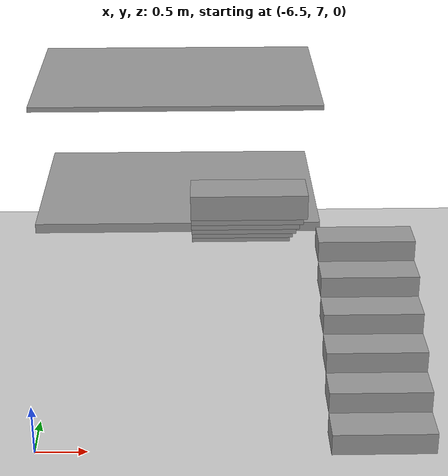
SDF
<sdf version="1.6">
 <world name="stairs_in_emptyworld">
  <light name="sun" type="directional"><cast_shadows>0</cast_shadows><pose>0 0 10 0 -0 0</pose></light>
  <model name="ground_plane">
   <static>1</static>
   <link name="link">
    <collision name="collision">
     <geometry><plane><normal>0 0 1</normal><size>100 100</size></plane></geometry>
     <surface><friction><ode><mu>100</mu><mu2>50</mu2></ode></friction></surface>
    </collision>
    <visual name="visual">
     <cast_shadows>0</cast_shadows>
     <geometry><plane><normal>0 0 1</normal><size>100 100</size></plane></geometry>
     <material>
      <script><uri>file://media/materials/scripts/gazebo.material</uri><name>Gazebo/Grey</name></script>
     </material>
    </visual>
   </link>
  </model>
  <gravity>0 0 -9.8</gravity>
  <magnetic_field>6e-06 2.3e-05 -4.2e-05</magnetic_field>
  <atmosphere type="adiabatic"/>
  <physics name="default_physics" default="0" type="ode">
   <max_step_size>0.001</max_step_size>
   <real_time_factor>1</real_time_factor>
   <real_time_update_rate>1000</real_time_update_rate>
  </physics>
  <scene><shadows>0</shadows></scene>
  <spherical_coordinates>
   <surface_model>EARTH_WGS84</surface_model>
   <latitude_deg>0</latitude_deg>
   <longitude_deg>0</longitude_deg>
   <elevation>0</elevation>
   <heading_deg>0</heading_deg>
  </spherical_coordinates>
  <model name="stairs_platform45">
   <pose>-5.153592 10.122335 1.325 0 -0 0</pose>
   <link name="link">
    <collision name="collision">
     <geometry><box><size>3 2 0.1</size></box></geometry>
     <surface><friction><ode><mu>100</mu><mu2>50</mu2></ode></friction></surface>
     <pose>0 0 0.05 0 -0 0</pose>
    </collision>
    <visual name="visual">
     <cast_shadows>0</cast_shadows>
     <geometry><box><size>3 2 0.1</size></box></geometry>
     <material>
      <script><uri>file://media/materials/scripts/gazebo.material</uri><name>Gazebo/Grey</name></script>
     </material>
    </visual>
   </link>
   <static>1</static>
  </model>
  <model name="stairs_platform5">
   <pose>-5.153592 10.122335 2.65 0 -0 0</pose>
   <link name="link">
    <collision name="collision">
     <geometry><box><size>3 2 0.05</size></box></geometry>
     <surface><friction><ode><mu>100</mu><mu2>50</mu2></ode></friction></surface>
     <pose>0 0 0.025 0 -0 0</pose>
    </collision>
    <visual name="visual">
     <cast_shadows>0</cast_shadows>
     <geometry><box><size>3 2 0.05</size></box></geometry>
     <material>
      <script><uri>file://media/materials/scripts/gazebo.material</uri><name>Gazebo/Grey</name></script>
     </material>
    </visual>
   </link>
   <static>1</static>
  </model>
  <include>
   <uri>model://rs_gazebo/models/ss_hq4/stairs_45</uri>
   <name>stairs_45_1</name>
   <pose>-3.2 8.0 0 0 0 3.14</pose>
  </include>
  <include>
   <uri>model://rs_gazebo/models/ss_hq4/stairs_45</uri>
   <name>stairs_45_2</name>
   <pose>-4.5 8.0 1.345 0 0 0</pose>
  </include>
 </world>
</sdf>

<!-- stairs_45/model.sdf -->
<sdf version='1.6'>
  <model name='stairs45'>
    <pose frame=''>0 0 0 0 -0 0</pose>
    <link name='Stairs_1'>
      <visual name='Stairs_1_Visual_0'>
        <pose frame=''>0 0.916667 0.110417 0 -0 0</pose>
        <geometry>
          <box>
            <size>1 0.366667 0.220833</size>
          </box>
        </geometry>
        <material>
          <script>
            <uri>file://media/materials/scripts/gazebo.material</uri>
            <name>Gazebo/Grey</name>
          </script>
          <ambient>1 1 1 1</ambient>
        </material>
        <meta>
          <layer>0</layer>
        </meta>
      </visual>
      <collision name='Stairs_1_Collision_0'>
        <geometry>
          <box>
            <size>1 0.366667 0.220833</size>
          </box>
        </geometry>
        <pose frame=''>0 0.916667 0.110417 0 -0 0</pose>
      </collision>
      <visual name='Stairs_1_Visual_1'>
        <pose frame=''>0 0.55 0.33125 0 -0 0</pose>
        <geometry>
          <box>
            <size>1 0.366667 0.220833</size>
          </box>
        </geometry>
        <material>
          <script>
            <uri>file://media/materials/scripts/gazebo.material</uri>
            <name>Gazebo/Grey</name>
          </script>
          <ambient>1 1 1 1</ambient>
        </material>
        <meta>
          <layer>0</layer>
        </meta>
      </visual>
      <collision name='Stairs_1_Collision_1'>
        <geometry>
          <box>
            <size>1 0.366667 0.220833</size>
          </box>
        </geometry>
        <pose frame=''>0 0.55 0.33125 0 -0 0</pose>
      </collision>
      <visual name='Stairs_1_Visual_2'>
        <pose frame=''>0 0.183333 0.552083 0 -0 0</pose>
        <geometry>
          <box>
            <size>1 0.366667 0.220833</size>
          </box>
        </geometry>
        <material>
          <script>
            <uri>file://media/materials/scripts/gazebo.material</uri>
            <name>Gazebo/Grey</name>
          </script>
          <ambient>1 1 1 1</ambient>
        </material>
        <meta>
          <layer>0</layer>
        </meta>
      </visual>
      <collision name='Stairs_1_Collision_2'>
        <geometry>
          <box>
            <size>1 0.366667 0.220833</size>
          </box>
        </geometry>
        <pose frame=''>0 0.183333 0.552083 0 -0 0</pose>
      </collision>
      <visual name='Stairs_1_Visual_3'>
        <pose frame=''>0 -0.183333 0.772917 0 -0 0</pose>
        <geometry>
          <box>
            <size>1 0.366667 0.220833</size>
          </box>
        </geometry>
        <material>
          <script>
            <uri>file://media/materials/scripts/gazebo.material</uri>
            <name>Gazebo/Grey</name>
          </script>
          <ambient>1 1 1 1</ambient>
        </material>
        <meta>
          <layer>0</layer>
        </meta>
      </visual>
      <collision name='Stairs_1_Collision_3'>
        <geometry>
          <box>
            <size>1 0.366667 0.220833</size>
          </box>
        </geometry>
        <pose frame=''>0 -0.183333 0.772917 0 -0 0</pose>
      </collision>
      <visual name='Stairs_1_Visual_4'>
        <pose frame=''>0 -0.55 0.99375 0 -0 0</pose>
        <geometry>
          <box>
            <size>1 0.366667 0.220833</size>
          </box>
        </geometry>
        <material>
          <script>
            <uri>file://media/materials/scripts/gazebo.material</uri>
            <name>Gazebo/Grey</name>
          </script>
          <ambient>1 1 1 1</ambient>
        </material>
        <meta>
          <layer>0</layer>
        </meta>
      </visual>
      <collision name='Stairs_1_Collision_4'>
        <geometry>
          <box>
            <size>1 0.366667 0.220833</size>
          </box>
        </geometry>
        <pose frame=''>0 -0.55 0.99375 0 -0 0</pose>
      </collision>
      <visual name='Stairs_1_Visual_5'>
        <pose frame=''>0 -0.916667 1.21458 0 -0 0</pose>
        <geometry>
          <box>
            <size>1 0.366667 0.220833</size>
          </box>
        </geometry>
        <material>
          <script>
            <uri>file://media/materials/scripts/gazebo.material</uri>
            <name>Gazebo/Grey</name>
          </script>
          <ambient>1 1 1 1</ambient>
        </material>
        <meta>
          <layer>0</layer>
        </meta>
      </visual>
      <collision name='Stairs_1_Collision_5'>
        <geometry>
          <box>
            <size>1 0.366667 0.220833</size>
          </box>
        </geometry>
        <pose frame=''>0 -0.916667 1.21458 0 -0 0</pose>
      </collision>
    </link>
    <static>1</static>
  </model>
</sdf>
